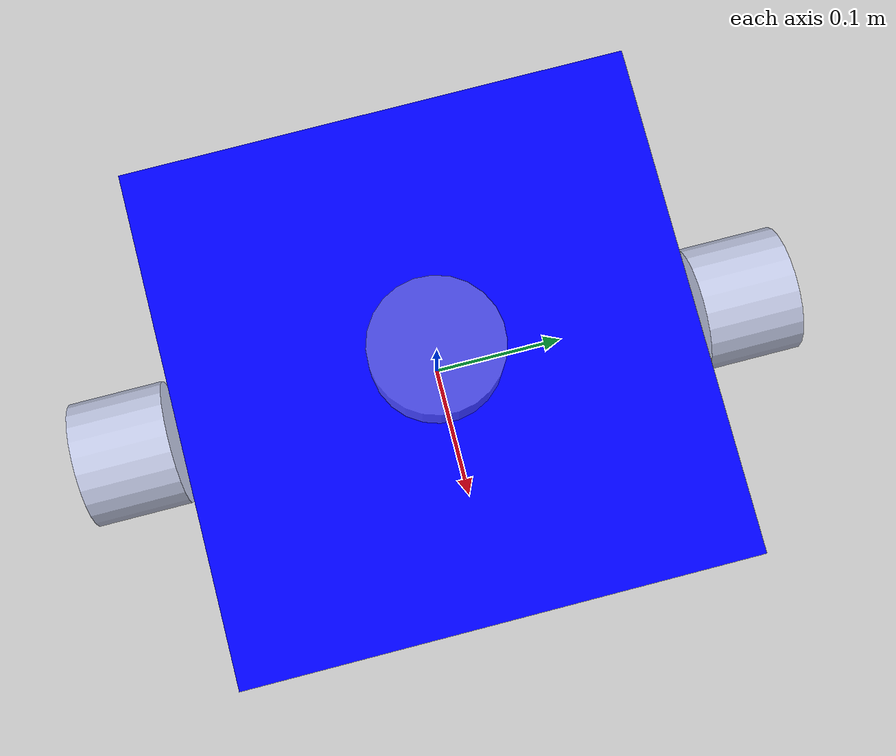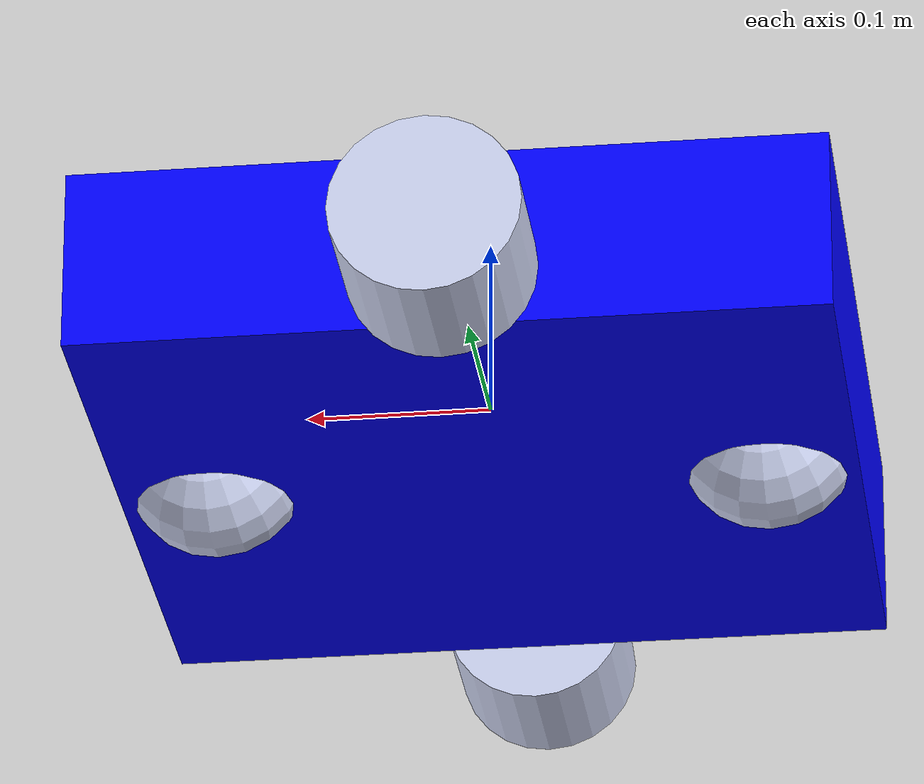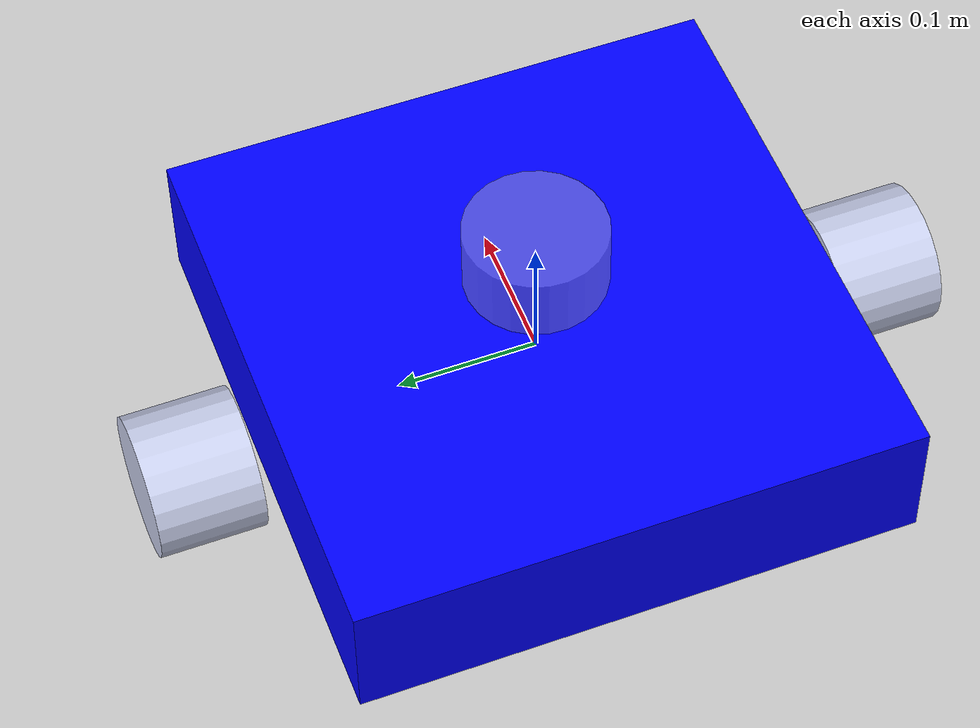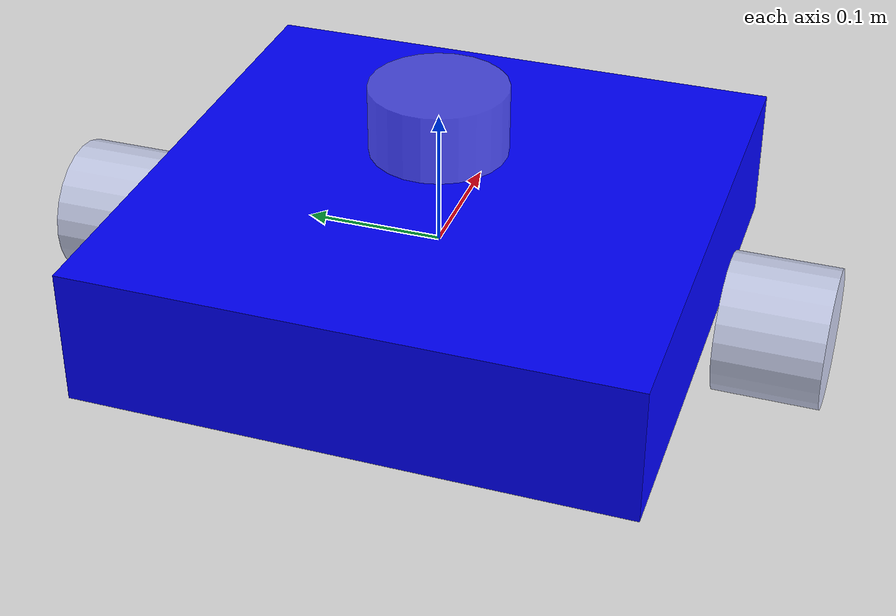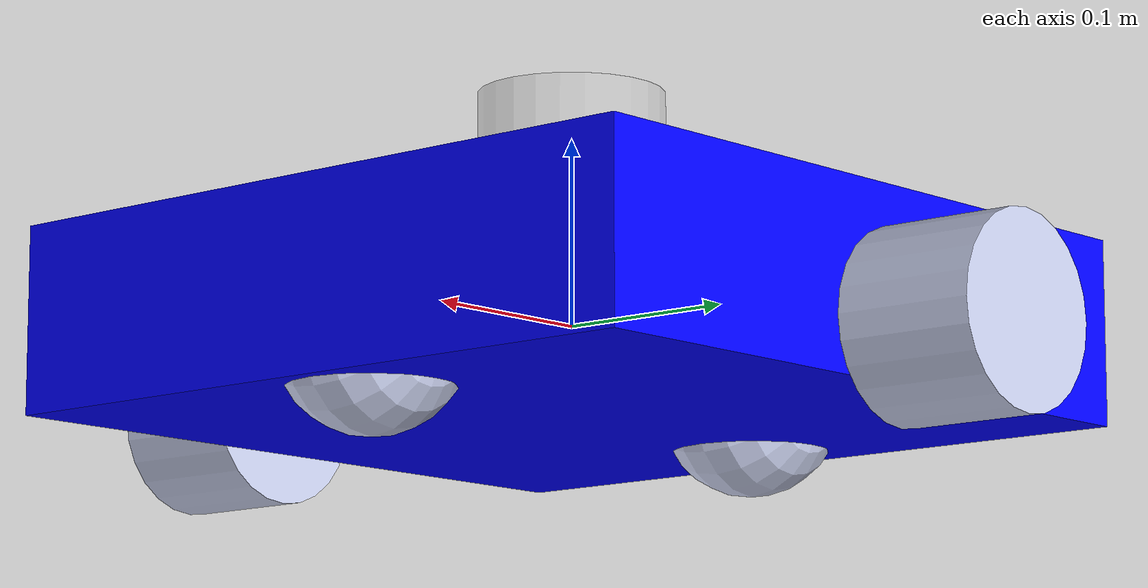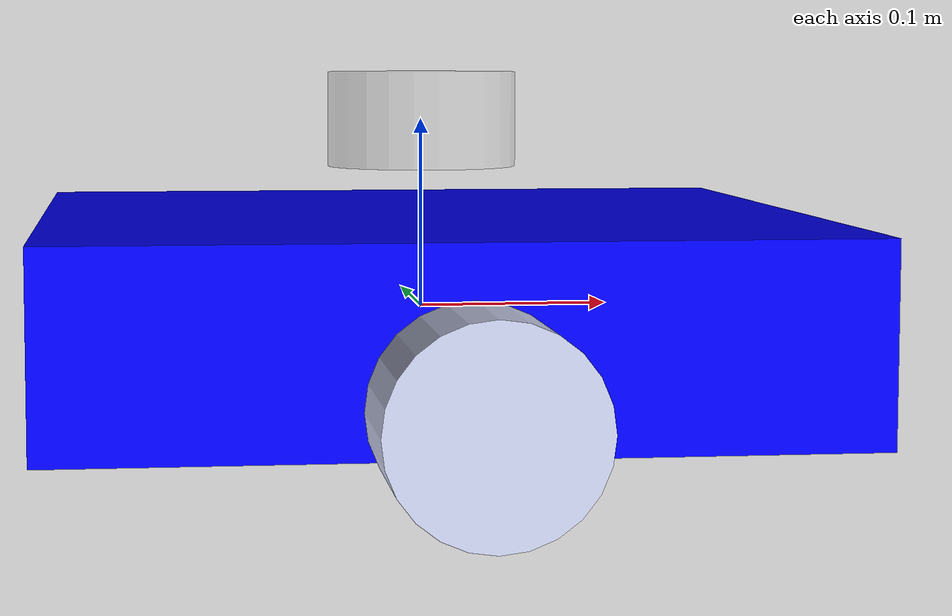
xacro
<?xml version="1.0"?>
<robot name="basic_robot" xmlns:xacro="http://www.ros.org/wiki/xacro">

    <xacro:include filename="body.urdf.xacro"/>
    <xacro:include filename="castors.urdf.xacro"/>
    <xacro:include filename="wheels.urdf.xacro"/>
    <xacro:include filename="sensors.urdf.xacro"/>
    <xacro:include filename="gz_plugins.urdf.xacro"/>
    <xacro:include filename="gz_control.urdf.xacro"/>

</robot>

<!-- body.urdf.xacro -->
<robot xmlns:xacro="http://www.ros.org/wiki/xacro">

    <link name="base_link">
        <visual>
            <geometry>
                <box size="0.4 0.4 0.1"/> <!-- 400mm x 400mm x 100mm height -->
            </geometry>
            <material name="blue">
                <color rgba="0.0 0.0 1.0 1.0"/>
            </material>
        </visual>

        <collision>
            <geometry>
                <box size="0.4 0.4 0.1"/>
            </geometry>
        </collision>
    </link>

</robot>

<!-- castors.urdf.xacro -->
<robot xmlns:xacro="http://www.ros.org/wiki/xacro">

    <link
        name="rear_castor_link">
        <inertial>
        <mass value="0.5"/>
            <origin
              xyz="0.00566273525640093 -0.00989412534430653 -1.89986618215343E-07"
              rpy="0 0 0" />
        <inertia
            ixx="0.000209361851648379"
            ixy="1.5320155892368E-05"
            ixz="-1.41603895661375E-10"
            iyy="0.000207403161472826"
            iyz="2.96359099477467E-11"
            izz="0.000343890788216305" />
        </inertial>
        <visual>
        <origin
            xyz="0 0 0"
            rpy="0 0 0" />
        <geometry>
            <sphere radius="0.05"/>
        </geometry>
        <material
            name="">
            <color
            rgba="0.792156862745098 0.819607843137255 0.933333333333333 1" />
        </material>
        </visual>
        <collision>
        <origin
            xyz="0 0 0"
            rpy="0 0 0" />
        <geometry>
                <sphere radius="0.05"/>
        </geometry>
        </collision>
    </link>
    <joint
        name="rear_castor_joint"
        type="fixed">
        <origin
            xyz="-0.15 0.0 -0.025"
            rpy="-1.5708 0 0" />
        <parent
        link="base_link" />
        <child
        link="rear_castor_link" />
        <axis
        xyz="0 0 1" />
        <dynamics
        damping="0"
        friction="0" />
    </joint>
    <gazebo reference="rear_castor_link">
        <visual>
            <material> <!-- Green -->
                <ambient>0.0 0.1 0.0 1.0</ambient>
                <diffuse>0.0 1.0 0.0 1.0</diffuse>
                <specular>0.0 0.5 0.0 1.0</specular>
                <emissive>0.0 0.0 0.0 1.0</emissive>
            </material>
        </visual>
        <collision>
            <surface>
                <friction>
                  <ode>
                    <mu>0.0</mu> <!-- Friction coefficient -->
                    <mu2>0.0</mu2>
                  </ode>
                </friction>
              </surface>
        </collision>
    </gazebo>

    <link
        name="front_castor_link">
        <inertial>
        <mass value="0.5"/>
            <origin
              xyz="0.00566273525640093 -0.00989412534430653 -1.89986618215343E-07"
              rpy="0 0 0" />
        <inertia
            ixx="0.000209361851648379"
            ixy="1.5320155892368E-05"
            ixz="-1.41603895661375E-10"
            iyy="0.000207403161472826"
            iyz="2.96359099477467E-11"
            izz="0.000343890788216305" />
        </inertial>
        <visual>
        <origin
            xyz="0 0 0"
            rpy="0 0 0" />
        <geometry>
            <sphere radius="0.05"/>
        </geometry>
        <material
            name="">
            <color
            rgba="0.792156862745098 0.819607843137255 0.933333333333333 1" />
        </material>
        </visual>
        <collision>
        <origin
            xyz="0 0 0"
            rpy="0 0 0" />
        <geometry>
                <sphere radius="0.05"/>
        </geometry>
        </collision>
    </link>
    <joint
        name="front_castor_joint"
        type="fixed">
        <origin
            xyz="0.15 0.0 -0.025"
            rpy="1.5708 0 0" />
        <parent
        link="base_link" />
        <child
        link="front_castor_link" />
        <axis
        xyz="0 0 1" />
        <dynamics
        damping="0"
        friction="0" />
    </joint>
    <gazebo reference="front_castor_link">
        <visual>
            <material> <!-- Green -->
                <ambient>0.0 0.1 0.0 1.0</ambient>
                <diffuse>0.0 1.0 0.0 1.0</diffuse>
                <specular>0.0 0.5 0.0 1.0</specular>
                <emissive>0.0 0.0 0.0 1.0</emissive>
            </material>
        </visual>
        <collision>
            <surface>
                <friction>
                  <ode>
                    <mu>0.0</mu> <!-- Friction coefficient -->
                    <mu2>0.0</mu2>
                  </ode>
                </friction>
              </surface>
        </collision>
    </gazebo>

</robot>

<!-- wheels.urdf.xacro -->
<robot xmlns:xacro="http://www.ros.org/wiki/xacro">

  <!-- left_wheel-->
  <link
    name="left_wheel_link">
    <inertial>
    <mass value="0.5"/>
      <origin
        xyz="0.00566273525640093 -0.00989412534430653 -1.89986618215343E-07"
        rpy="0 0 0" />
    <inertia
        ixx="0.000209361851648379"
        ixy="1.5320155892368E-05"
        ixz="-1.41603895661375E-10"
        iyy="0.000207403161472826"
        iyz="2.96359099477467E-11"
        izz="0.000343890788216305" />
    </inertial>
    <visual>
      <origin
        xyz="0 0 0"
        rpy="0 0 0" />
      <geometry>
        <cylinder radius="0.05" length="0.075"/>
      </geometry>
      <material
        name="">
        <color
          rgba="0.79216 0.81961 0.93333 1" />
      </material>
    </visual>
    <collision>
      <origin
        xyz="0 0 0"
        rpy="0 0 0" />
      <geometry>
        <cylinder radius="0.05" length="0.075"/>
      </geometry>
    </collision>
  </link>

  <joint
    name="left_wheel_joint"
    type="continuous">
    <origin
      xyz="0 0.25 -0.025"
      rpy="-1.5708 0 0" />
    <parent
      link="base_link"/>
    <child
      link="left_wheel_link" />
    <axis
      xyz="0 0 1" />  <!--The diff drive plugin needs the axis pointing inwards. -->
  </joint>

  <gazebo reference="left_wheel_link">
    <visual>
      <material> <!-- Red -->
        <ambient>0.1 0.0 0.0 1.0</ambient>
        <diffuse>1.0 0.0 0.0 1.0</diffuse>
        <specular>0.5 0.0 0.0 1.0</specular>
        <emissive>0.0 0.0 0.0 1.0</emissive>
    </material>
    </visual>
    <collision>
      <origin
        xyz="0 0 0"
        rpy="0 0 0" />
      <geometry>
        <cylinder radius="0.05" length="0.075"/>
      </geometry>
      <surface>
        <friction>
          <ode>
            <mu>1.0</mu> <!-- value range 0.0 to 1.0 -->
            <mu2>0.8</mu2> <!-- value range 0.0 to 1.0 -->
          </ode>
        </friction>
      </surface>
    </collision>
  </gazebo>

  <!-- right_wheel-->
  <link
    name="right_wheel_link">
    <inertial>
    <mass value="0.5"/>
      <origin
        xyz="0.00566273525640093 -0.00989412534430653 -1.89986618215343E-07"
        rpy="0 0 0" />
      <inertia
        ixx="0.000209361851648379"
        ixy="1.5320155892368E-05"
        ixz="-1.41603895661375E-10"
        iyy="0.000207403161472826"
        iyz="2.96359099477467E-11"
        izz="0.000343890788216305" />
    </inertial>
    <visual>
      <origin
        xyz="0 0 0"
        rpy="0 0 0" />
      <geometry>
        <cylinder radius="0.05" length="0.075"/>
      </geometry>
      <material
        name="">
        <color
          rgba="0.79216 0.81961 0.93333 1" />
      </material>
    </visual>
    <collision>
      <origin
        xyz="0 0 0"
        rpy="0 0 0" />
      <geometry>
        <cylinder radius="0.05" length="0.075"/>
      </geometry>
    </collision>
  </link>

  <joint
    name="right_wheel_joint"
    type="continuous">
    <origin
      xyz="0 -0.25 -0.025"
      rpy="1.5708 0 0" />
    <parent
      link="base_link"/>
    <child
      link="right_wheel_link" />
    <axis
      xyz="0 0 -1" />  <!--The diff drive plugin needs the axis pointing inwards. -->
  </joint>

  <gazebo reference="right_wheel_link">
    <visual>
      <material> <!-- Red -->
        <ambient>0.1 0.0 0.0 1.0</ambient>
        <diffuse>1.0 0.0 0.0 1.0</diffuse>
        <specular>0.5 0.0 0.0 1.0</specular>
        <emissive>0.0 0.0 0.0 1.0</emissive>
    </material>
    </visual>
    <collision>
      <origin
        xyz="0 0 0"
        rpy="0 0 0" />
      <geometry>
        <cylinder radius="0.05" length="0.075"/>
      </geometry>
      <surface>
        <friction>
          <ode>
            <mu>1.0</mu> <!-- value range 0.0 to 1.0 -->
            <mu2>0.8</mu2> <!-- value range 0.0 to 1.0 -->
          </ode>
        </friction>
      </surface>
    </collision>
  </gazebo>

</robot>

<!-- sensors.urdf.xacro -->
<robot xmlns:xacro="http://www.ros.org/wiki/xacro">

    <link
        name="rplidar_link">
    <inertial>
      <mass value="0.5"/>
      <origin
        xyz="0.00566273525640093 -0.00989412534430653 -1.89986618215343E-07"
        rpy="0 0 0" />
      <inertia
        ixx="0.000209361851648379"
        ixy="1.5320155892368E-05"
        ixz="-1.41603895661375E-10"
        iyy="0.000207403161472826"
        iyz="2.96359099477467E-11"
        izz="0.000343890788216305" />
    </inertial>
    <visual>
      <origin
        xyz="0 0 0"
        rpy="0 0 0" />
      <geometry>
        <cylinder radius="0.05" length="0.05"/>
      </geometry>
      <material
        name="">
        <color
          rgba="0.75294 0.75294 0.75294 0.4" />
      </material>
    </visual>
    <collision>
      <origin
        xyz="0 0 0"
        rpy="0 0 0" />
      <geometry>
        <cylinder radius="0.05" length="0.05"/>
      </geometry>
    </collision>
  </link>
  <joint
    name="rplidar_joint"
    type="fixed"> <!-- The LiDAR is fixed and does not rotate. -->
    <origin
      xyz="0.0 0.0 0.1"
      rpy="0 0 0.075" />  <!-- Elevated the LiDAR to avoid obstructions. -->
    <parent
      link="base_link" />
    <child
      link="rplidar_link" />
    <axis
      xyz="0 0 1" />
  </joint>

  <gazebo reference="rplidar_link">
    <visual>
      <material> <!-- Red -->
        <ambient>0.1 0.0 0.0 1.0</ambient>
        <diffuse>1.0 0.0 0.0 1.0</diffuse>
        <specular>0.5 0.0 0.0 1.0</specular>
        <emissive>0.0 0.0 0.0 1.0</emissive>
    </material>
    </visual>
    <collision>
      <origin
        xyz="0 0 0"
        rpy="0 0 0" />
      <geometry>
        <cylinder radius="0.05" length="0.075"/>
      </geometry>
      <surface>
        <friction>
          <ode>
            <mu>1.0</mu> <!-- value range 0.0 to 1.0 -->
            <mu2>0.8</mu2> <!-- value range 0.0 to 1.0 -->
          </ode>
        </friction>
      </surface>
    </collision>
  </gazebo>

  <gazebo reference="rplidar_link">
    <sensor name="rplidar" type="gpu_lidar">
      <always_on>true</always_on>
      <visualize>true</visualize>
      <pose>0 0 0 0 0 0</pose>
      <update_rate>30</update_rate>
      <topic>scan</topic>
      <gz_frame_id>rplidar_link</gz_frame_id>
      <lidar>
        <scan>
          <horizontal>
            <samples>360</samples>
            <resolution>1</resolution>
            <min_angle>-3.1415</min_angle>
            <max_angle>3.1415</max_angle>
          </horizontal>
        </scan>
        <range>
          <min>0.05</min>
          <max>40.0</max>
          <resolution>0.008</resolution>
        </range>
      </lidar>
    </sensor>
  </gazebo>

</robot>
